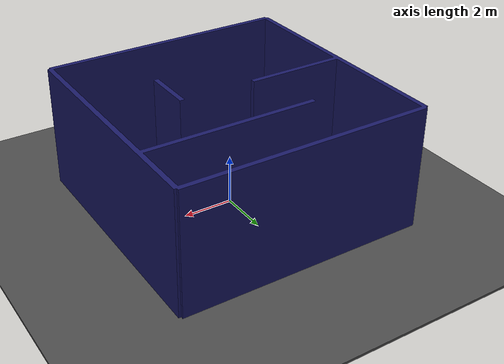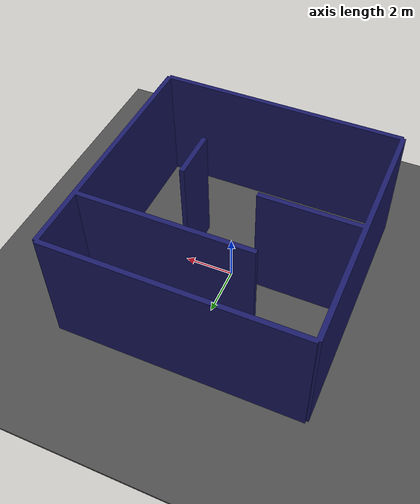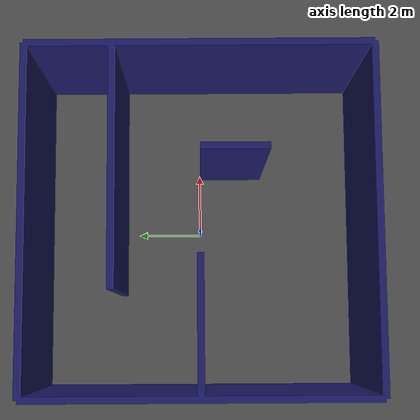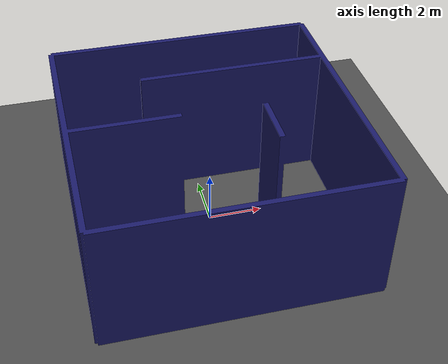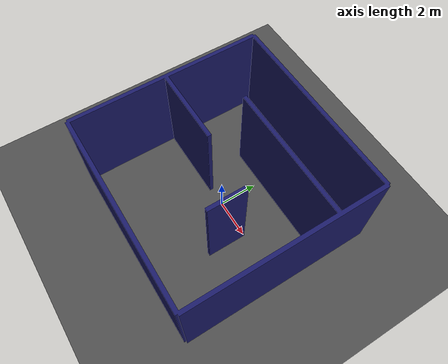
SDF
<?xml version="1.0" ?>
<sdf version="1.7">
  <world name="simple_box">
    <physics type="ode">
      <max_step_size>0.01</max_step_size>
    </physics>

    <light name="sun" type="directional">
      <cast_shadows>true</cast_shadows>
      <pose>0 0 10 0 0 0</pose>
      <diffuse>0.8 0.8 0.8 1</diffuse>
      <specular>0.3 0.3 0.3 1</specular>
      <attenuation>
        <range>1000</range>
        <constant>0.9</constant>
        <linear>0.01</linear>
        <quadratic>0.001</quadratic>
      </attenuation>
      <direction>-0.5 0.3 -1.0</direction>
    </light>

    <model name="physics_floor">
      <static>true</static>
      <pose>0 0 -0.05 0 0 0</pose>
      <link name="link">
        <collision name="collision">
          <geometry>
            <box><size>100 100 0.1</size></box>
          </geometry>
          <surface>
            <friction>
              <ode>
                <mu>100</mu>
                <mu2>50</mu2>
              </ode>
            </friction>
          </surface>
        </collision>
        <visual name="visual">
          <geometry>
            <box><size>100 100 0.1</size></box>
          </geometry>
          <material>
            <ambient>0.3 0.3 0.3 1</ambient>
            <diffuse>0.3 0.3 0.3 1</diffuse>
          </material>
        </visual>
      </link>
    </model>

    <model name="simple_box_map">
      <static>true</static>
      <link name="link">
        <visual name="visual">
          <geometry>
            <mesh>
              <uri>../meshes/simple_box.stl</uri>
              <scale>1 1 1</scale>
            </mesh>
          </geometry>
          <material>
            <ambient>0.2 0.2 0.5 1.0</ambient>
            <diffuse>0.1 0.1 0.4 1.0</diffuse>
            <specular>0.05 0.05 0.1 1.0</specular>
          </material>
        </visual>

        <visual name="visual_backfaces">
          <geometry>
            <mesh>
              <uri>../meshes/simple_box.stl</uri>
              <scale>1 1 1</scale>
            </mesh>
          </geometry>
          <material>
            <ambient>0.2 0.2 0.5 1.0</ambient>
            <diffuse>0.1 0.1 0.4 1.0</diffuse>
            <specular>0.05 0.05 0.1 1.0</specular>
          </material>
        </visual>
      </link>
    </model>
  </world>
</sdf>
